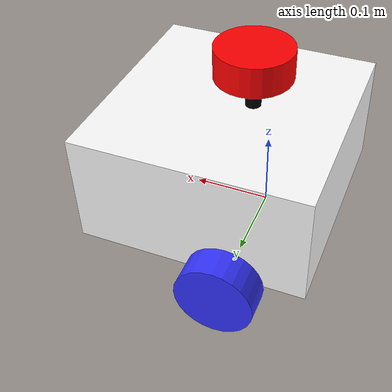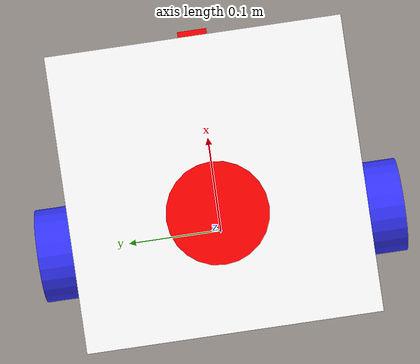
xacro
<?xml version="1.0"?>
<robot xmlns:xacro="http://www.ros.org/wiki/xacro"  name="robot">

    <xacro:include filename="robot_core.xacro" />

   <!--gazebo diff drive plugin-->
    <gazebo>
        <plugin name="diff_drive" filename="libgazebo_ros_diff_drive.so">

            <!-- Wheel Information -->
            <left_joint>left_wheel_joint</left_joint>
            <right_joint>right_wheel_joint</right_joint>
            <wheel_separation>0.35</wheel_separation>
            <wheel_diameter>0.1</wheel_diameter>

            <!-- Limits -->
            <max_wheel_torque>0.5</max_wheel_torque>
            <max_wheel_acceleration>0.1</max_wheel_acceleration>

            <!-- Output -->
            <odometry_frame>odom</odometry_frame>
            <robot_base_frame>base_link</robot_base_frame>

            <publish_odom>true</publish_odom>
            <publish_odom_tf>true</publish_odom_tf>
            <publish_wheel_tf>true</publish_wheel_tf>

        </plugin>

    </gazebo>

</robot>

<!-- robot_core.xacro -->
<robot xmlns:xacro="http://www.ros.org/wiki/xacro" >

    <xacro:include filename="inertial_macros.xacro"/>

    <material name="white">
        <color rgba="1 1 1 1" />
    </material>

    <material name="orange">
        <color rgba="1 0.3 0.1 1"/>
    </material>

    <material name="blue">
        <color rgba="0.2 0.2 1 1"/>
    </material>

    <material name="black">
        <color rgba="0 0 0 1"/>
    </material>
    <material name="red">
        <color rgba="1 0 0 1"/>
    </material>

    <!-- BASE LINK -->

    <link name="base_link">

    </link>

    <!-- CHASSIS LINK -->

    <joint name="chassis_joint" type="fixed">
        <parent link="base_link"/>
        <child link="chassis"/>
        <origin xyz="-0.1 0 0"/>
    </joint>

    <link name="chassis">
        <visual>
            <origin xyz="0.15 0 0.075"/>
            <geometry>
                <box size="0.3 0.3 0.15"/>
            </geometry>
            <material name="white"/>
        </visual>
        <collision>
            <origin xyz="0.15 0 0.075"/>
            <geometry>
                <box size="0.3 0.3 0.15"/>
            </geometry>
        </collision>
        <xacro:inertial_box mass="1.5" x="0.3" y="0.3" z="0.15">
            <origin xyz="0.15 0 0.075" rpy="0 0 0"/>
        </xacro:inertial_box>
    </link>

    <gazebo reference="chassis">
        <material>Gazebo/White</material>
    </gazebo>

    <!-- LEFT WHEEL LINK -->

    <joint name="left_wheel_joint" type="continuous">
        <parent link="base_link"/>
        <child link="left_wheel"/>
        <origin xyz="0 0.175 0" rpy="-${pi/2} 0 0" />
        <axis xyz="0 0 1"/>
    </joint>

    <link name="left_wheel">
        <visual>
            <geometry>
                <cylinder radius="0.05" length="0.04"/>
            </geometry>
            <material name="blue"/>
        </visual>
        <collision>
            <geometry>
                <cylinder radius="0.05" length="0.04"/>
            </geometry>
        </collision>
        <xacro:inertial_cylinder mass="0.1" length="0.04" radius="0.05">
            <origin xyz="0 0 0" rpy="0 0 0"/>
        </xacro:inertial_cylinder>
    </link>
    <gazebo reference="left_wheel">
        <material>Gazebo/Blue</material>
    </gazebo>

    <!-- RIGHT WHEEL LINK -->

    <joint name="right_wheel_joint" type="continuous">
        <parent link="base_link"/>
        <child link="right_wheel"/>
        <origin xyz="0 -0.175 0" rpy="${pi/2} 0 0" />
        <axis xyz="0 0 -1"/>
    </joint>

    <link name="right_wheel">
        <visual>
            <geometry>
                <cylinder radius="0.05" length="0.04"/>
            </geometry>
            <material name="blue"/>
        </visual>
        <collision>
            <geometry>
                <cylinder radius="0.05" length="0.04"/>
            </geometry>
        </collision>
        <xacro:inertial_cylinder mass="0.1" length="0.04" radius="0.05">
            <origin xyz="0 0 0" rpy="0 0 0"/>
        </xacro:inertial_cylinder>
    </link>
    <gazebo reference="right_wheel">
        <material>Gazebo/Blue</material>
    </gazebo>

    <!-- CASTER WHEEL LINK -->

    <joint name="caster_wheel_joint" type="fixed">
        <parent link="chassis"/>
        <child link="caster_wheel"/>
        <origin xyz="0.24 0 0"/>
    </joint>

    <link name="caster_wheel">
        <visual>
            <geometry>
                <sphere radius="0.05"/>
            </geometry>
            <material name="black"/>
        </visual>
        <collision>
            <geometry>
                <sphere radius="0.05"/>
            </geometry>
        </collision>
        <xacro:inertial_sphere mass="0.1" radius="0.05">
            <origin xyz="0 0 0" rpy="0 0 0"/>
        </xacro:inertial_sphere>
    </link>
    <gazebo reference="caster_wheel">
        <material>Gazebo/Black</material>
        <mu1 value="0.001"/>
        <mu2 value="0.001"/>
    </gazebo>

    <!-- LIDAR LINK -->

     <joint name="laser_joint" type="fixed">
        <parent link="chassis"/>
        <child link="laser_frame"/>
        <origin xyz="0.122 0 0.212" rpy="0 0 0"/>
    </joint>

    <link name="laser_frame">
        <visual>
            <geometry>
                <cylinder radius="0.05" length="0.04"/>
            </geometry>
            <material name="red"/>
        </visual>
        <visual>
            <origin xyz="0 0 -0.05"/>
            <geometry>
                <cylinder radius="0.01" length="0.1"/>
            </geometry>
            <material name="black"/>
        </visual>
        <collision>
            <geometry>
                <cylinder radius="0.05" length="0.04"/>
            </geometry>
        </collision>
        <xacro:inertial_cylinder mass="0.1" length="0.04" radius="0.05">
            <origin xyz="0 0 0" rpy="0 0 0"/>
        </xacro:inertial_cylinder>
    </link>
    <gazebo reference="laser_frame">
        <material>Gazebo/Red</material>

        <sensor name="laser" type="ray">
            <pose> 0 0 0 0 0 0 </pose>
            <visualize>false</visualize>
            <update_rate>10</update_rate>
            <ray>
                <scan>
                    <horizontal>
                        <samples>360</samples>
                        <min_angle>-3.14</min_angle>
                        <max_angle>3.14</max_angle>
                    </horizontal>
                </scan>
                <range>
                    <min>0.3</min>
                    <max>12</max>
                </range>
            </ray>
            <plugin name="laser_controller" filename="libgazebo_ros_ray_sensor.so">
                <ros>
                    <remapping>~/out:=scan</remapping>
                </ros>
                <output_type>sensor_msgs/LaserScan</output_type>
                <frame_name>laser_frame</frame_name>
            </plugin>
        </sensor>
    </gazebo>

    <!--CAMERA-->

    <!--DEPTH CAMERA-->

     <joint name="camera_joint" type="fixed">
        <parent link="chassis"/>
        <child link="camera_link"/>
        <origin xyz="0.305 0 0.08" rpy="0 0 0"/>
    </joint>

    <link name="camera_link">
        <visual>
            <geometry>
                <box size="0.010 0.03 0.03"/>
            </geometry>
            <material name="red"/>
        </visual>
    </link>

    <joint name="camera_optical_joint" type="fixed">
        <parent link="camera_link"/>
        <child link="camera_link_optical"/>
        <origin xyz="0 0 0" rpy="${-pi/2} 0 ${-pi/2}"/>
    </joint>

    <link name="camera_link_optical"></link>

    <gazebo reference="camera_link">
        <material>Gazebo/Red</material>

        <sensor name="camera" type="depth">
            <pose> 0 0 0 0 0 0 </pose>
            <visualize>true</visualize>
            <update_rate>10</update_rate>
            <camera>
                <horizontal_fov>1.089</horizontal_fov>
                <image>
                    <format>B8R8G8</format>
                    <width>640</width>
                    <height>480</height>
                </image>
                <clip>
                    <near>0.05</near>
                    <far>8.0</far>
                </clip>
            </camera>
            <plugin name="camera_controller" filename="libgazebo_ros_camera.so">
                <frame_name>camera_link_optical</frame_name>
                <min_depth>0.1</min_depth>
                <max_depth>100</max_depth>
            </plugin>
        </sensor>
    </gazebo>

    <!--gazebo ros2 control and ros2 control itself-->

   <ros2_control name="GazeboSystem" type="system">
        <hardware>
            <plugin>gazebo_ros2_control/GazeboSystem</plugin>
        </hardware>
        <joint name="left_wheel_joint">
            <command_interface name="velocity">
                <param name="min">-10</param>
                <param name="max">10</param>
            </command_interface>
            <state_interface name="velocity"/>
            <state_interface name="position"/>
        </joint>
        <joint name="right_wheel_joint">
            <command_interface name="velocity">
                <param name="min">-10</param>
                <param name="max">10</param>
            </command_interface>
            <state_interface name="velocity"/>
            <state_interface name="position"/>
        </joint>
    </ros2_control>

    <gazebo>
        <plugin name="gazebo_ros2_control" filename="libgazebo_ros2_control.so">
            <parameters>/home/ubuntu/ros2_ws/src/articubot_one/my_controllers.yaml</parameters>
        </plugin>
    </gazebo>

</robot>
